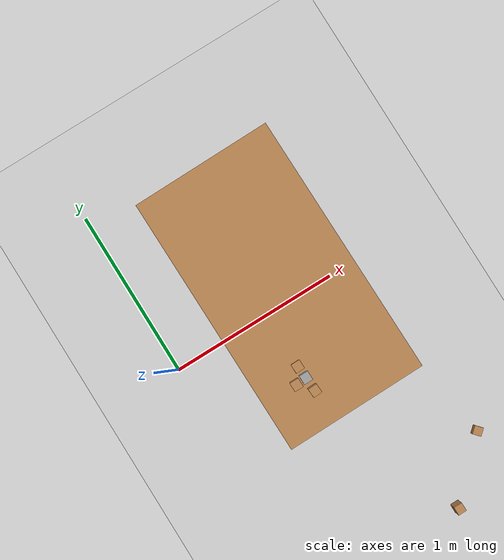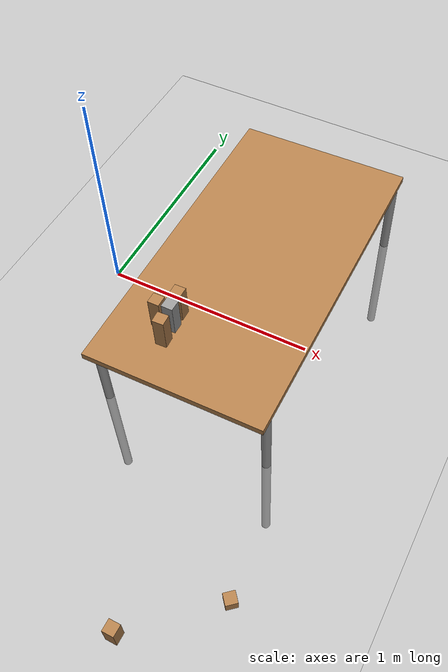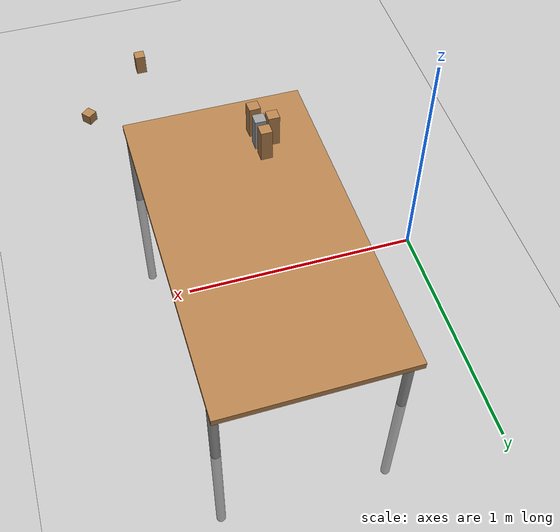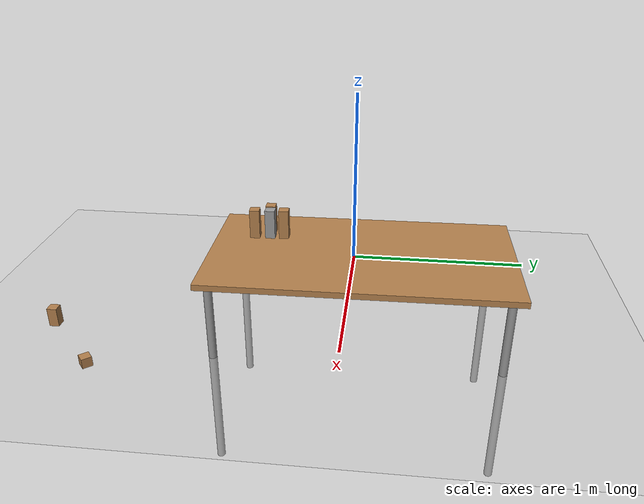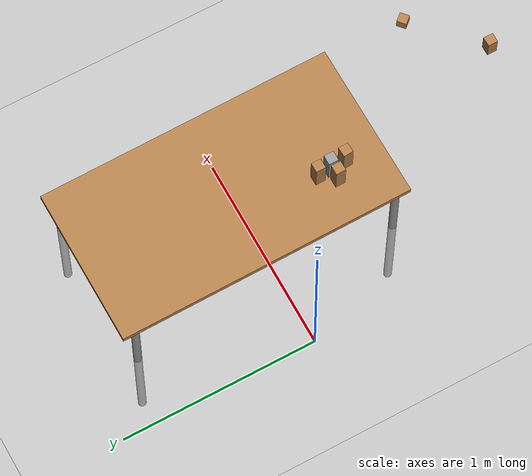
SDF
<sdf version="1.4">
 <world name="default">
  <model name="ground_plane">
   <static>1</static>
   <link name="link">
    <collision name="collision">
     <geometry><plane><normal>0 0 1</normal><size>100 100</size></plane></geometry>
     <surface><friction><ode><mu>100</mu><mu2>50</mu2></ode></friction></surface>
    </collision>
    <visual name="visual">
     <cast_shadows>0</cast_shadows>
     <geometry><plane><normal>0 0 1</normal><size>100 100</size></plane></geometry>
     <material>
      <script><uri>file://media/materials/scripts/gazebo.material</uri><name>Gazebo/Grey</name></script>
     </material>
    </visual>
    <velocity_decay><linear>0</linear><angular>0</angular></velocity_decay>
   </link>
  </model>
  <light name="sun" type="directional">
   <pose>0 0 10 0 -0 0</pose>
   <diffuse>0.8 0.8 0.8 1</diffuse>
   <specular>0.2 0.2 0.2 1</specular>
   <attenuation>
    <range>1000</range>
    <constant>0.9</constant>
    <linear>0.01</linear>
    <quadratic>0.001</quadratic>
   </attenuation>
   <direction>-0.5 0.1 -0.9</direction>
  </light>
  <physics type="ode">
   <real_time_update_rate>1000</real_time_update_rate>
   <gravity>0 0 -9.81</gravity>
   <max_step_size>0.001</max_step_size>
   <real_time_factor>1</real_time_factor>
  </physics>
  <scene><ambient>0.4 0.4 0.4 1</ambient><background>0.7 0.7 0.7 1</background><shadows>1</shadows></scene>
  <spherical_coordinates>
   <surface_model>EARTH_WGS84</surface_model>
   <latitude_deg>0</latitude_deg>
   <longitude_deg>0</longitude_deg>
   <elevation>0</elevation>
   <heading_deg>0</heading_deg>
  </spherical_coordinates>
  <model name="custom_2">
   <link name="link">
    <inertial>
     <mass>0.0565</mass>
     <inertia>
      <ixx>2.35417e-05</ixx>
      <ixy>0</ixy>
      <ixz>0</ixz>
      <iyy>2.35417e-05</iyy>
      <iyz>0</iyz>
      <izz>2.35417e-05</izz>
     </inertia>
    </inertial>
    <collision name="collision">
     <geometry><box><size>0.05 0.05 0.1</size></box></geometry>
     <surface><contact><ode><max_vel>0.1</max_vel><min_depth>0.001</min_depth></ode></contact></surface>
    </collision>
    <visual name="visual">
     <geometry><box><size>0.05 0.05 0.1</size></box></geometry>
     <material>
      <script><uri>file://media/materials/scripts/gazebo.material</uri><name>Gazebo/Wood</name></script>
     </material>
    </visual>
    <velocity_decay><linear>0</linear><angular>0</angular></velocity_decay>
   </link>
   <pose>0.913468 -1.46484 0.049486 -4.8e-05 -8.27181e-25 -0.000109</pose>
   <static>0</static>
  </model>
  <model name="custom_3">
   <link name="link">
    <inertial>
     <mass>0.0565</mass>
     <inertia>
      <ixx>2.35417e-05</ixx>
      <ixy>0</ixy>
      <ixz>0</ixz>
      <iyy>2.35417e-05</iyy>
      <iyz>0</iyz>
      <izz>2.35417e-05</izz>
     </inertia>
    </inertial>
    <collision name="collision">
     <geometry><box><size>0.05 0.05 0.05</size></box></geometry>
     <surface><contact><ode><max_vel>0.1</max_vel><min_depth>0.001</min_depth></ode></contact></surface>
    </collision>
    <visual name="visual">
     <geometry><box><size>0.05 0.05 0.05</size></box></geometry>
     <material>
      <script><uri>file://media/materials/scripts/gazebo.material</uri><name>Gazebo/Wood</name></script>
     </material>
    </visual>
    <velocity_decay><linear>0</linear><angular>0</angular></velocity_decay>
   </link>
   <pose>1.23267 -1.16765 0.024672 -0.004668 -0.004339 0.713182</pose>
   <static>0</static>
  </model>
  <model name="custom_1_0">
   <link name="link">
    <inertial>
     <mass>0.0565</mass>
     <inertia>
      <ixx>2.35417e-05</ixx>
      <ixy>0</ixy>
      <ixz>0</ixz>
      <iyy>2.35417e-05</iyy>
      <iyz>0</iyz>
      <izz>2.35417e-05</izz>
     </inertia>
    </inertial>
    <collision name="collision">
     <geometry><box><size>0.05 0.05 0.15</size></box></geometry>
     <surface><contact><ode><max_vel>0.1</max_vel><min_depth>0.001</min_depth></ode></contact></surface>
    </collision>
    <visual name="visual">
     <geometry><box><size>0.05 0.05 0.15</size></box></geometry>
     <material>
      <script><uri>file://media/materials/scripts/gazebo.material</uri><name>Gazebo/Wood</name></script>
     </material>
    </visual>
    <velocity_decay><linear>0</linear><angular>0</angular></velocity_decay>
   </link>
   <pose>0.566597 -0.325186 0.467358 0.008201 -0.000391 -1.55055</pose>
   <static>0</static>
  </model>
  <model name="custom_table">
   <static>1</static>
   <link name="link">
    <collision name="surface">
     <geometry><box><size>1.5 0.8 0.03</size></box></geometry>
     <surface><friction><ode><mu>0.6</mu><mu2>0.6</mu2></ode></friction></surface>
    </collision>
    <visual name="visual1">
     <geometry><box><size>1.5 0.8 0.03</size></box></geometry>
     <material>
      <script><uri>file://media/materials/scripts/gazebo.material</uri><name>Gazebo/Wood</name></script>
     </material>
    </visual>
    <collision name="front_left_leg">
     <pose>0.68 0.38 0.5 0 -0 0</pose>
     <geometry><cylinder><radius>0.02</radius><length>1</length></cylinder></geometry>
    </collision>
    <visual name="front_left_leg">
     <pose>0.68 0.38 0.5 0 -0 0</pose>
     <geometry><cylinder><radius>0.02</radius><length>1</length></cylinder></geometry>
     <material>
      <script><uri>file://media/materials/scripts/gazebo.material</uri><name>Gazebo/Grey</name></script>
     </material>
    </visual>
    <collision name="front_right_leg">
     <pose>0.68 -0.38 0.5 0 -0 0</pose>
     <geometry><cylinder><radius>0.02</radius><length>1</length></cylinder></geometry>
    </collision>
    <visual name="front_right_leg">
     <pose>0.68 -0.38 0.5 0 -0 0</pose>
     <geometry><cylinder><radius>0.02</radius><length>1</length></cylinder></geometry>
     <material>
      <script><uri>file://media/materials/scripts/gazebo.material</uri><name>Gazebo/Grey</name></script>
     </material>
    </visual>
    <collision name="back_right_leg">
     <pose>-0.68 -0.38 0.5 0 -0 0</pose>
     <geometry><cylinder><radius>0.02</radius><length>1</length></cylinder></geometry>
    </collision>
    <visual name="back_right_leg">
     <pose>-0.68 -0.38 0.5 0 -0 0</pose>
     <geometry><cylinder><radius>0.02</radius><length>1</length></cylinder></geometry>
     <material>
      <script><uri>file://media/materials/scripts/gazebo.material</uri><name>Gazebo/Grey</name></script>
     </material>
    </visual>
    <collision name="back_left_leg">
     <pose>-0.68 0.38 0.5 0 -0 0</pose>
     <geometry><cylinder><radius>0.02</radius><length>1</length></cylinder></geometry>
    </collision>
    <visual name="back_left_leg">
     <pose>-0.68 0.38 0.5 0 -0 0</pose>
     <geometry><cylinder><radius>0.02</radius><length>1</length></cylinder></geometry>
     <material>
      <script><uri>file://media/materials/scripts/gazebo.material</uri><name>Gazebo/Grey</name></script>
     </material>
    </visual>
    <velocity_decay><linear>0</linear><angular>0</angular></velocity_decay>
   </link>
   <pose>0.706521 0.08117 0.378441 3.13347 0.000225 1.5819</pose>
  </model>
  <model name="custom_1_1">
   <link name="link">
    <inertial>
     <mass>0.0565</mass>
     <inertia>
      <ixx>2.35417e-05</ixx>
      <ixy>0</ixy>
      <ixz>0</ixz>
      <iyy>2.35417e-05</iyy>
      <iyz>0</iyz>
      <izz>2.35417e-05</izz>
     </inertia>
    </inertial>
    <collision name="collision">
     <geometry><box><size>0.05 0.05 0.15</size></box></geometry>
     <surface><contact><ode><max_vel>0.1</max_vel><min_depth>0.001</min_depth></ode></contact></surface>
    </collision>
    <visual name="visual">
     <geometry><box><size>0.05 0.05 0.15</size></box></geometry>
     <material>
      <script><uri>file://media/materials/scripts/gazebo.material</uri><name>Gazebo/Wood</name></script>
     </material>
    </visual>
    <velocity_decay><linear>0</linear><angular>0</angular></velocity_decay>
   </link>
   <pose>0.512927 -0.399791 0.466931 -0.000171 -0.008311 0.006514</pose>
   <static>0</static>
  </model>
  <model name="custom_1_2">
   <link name="link">
    <inertial>
     <mass>0.0565</mass>
     <inertia>
      <ixx>2.35417e-05</ixx>
      <ixy>0</ixy>
      <ixz>0</ixz>
      <iyy>2.35417e-05</iyy>
      <iyz>0</iyz>
      <izz>2.35417e-05</izz>
     </inertia>
    </inertial>
    <collision name="collision">
     <geometry><box><size>0.05 0.05 0.15</size></box></geometry>
     <surface><contact><ode><max_vel>0.1</max_vel><min_depth>0.001</min_depth></ode></contact></surface>
    </collision>
    <visual name="visual">
     <geometry><box><size>0.05 0.05 0.15</size></box></geometry>
     <material>
      <script><uri>file://media/materials/scripts/gazebo.material</uri><name>Gazebo/Wood</name></script>
     </material>
    </visual>
    <velocity_decay><linear>0</linear><angular>0</angular></velocity_decay>
   </link>
   <pose>0.57597 -0.472996 0.467456 -0.008104 0.000439 1.62058</pose>
   <static>0</static>
  </model>
  <model name="target">
   <link name="link">
    <inertial>
     <mass>0.0565</mass>
     <inertia>
      <ixx>2.35417e-05</ixx>
      <ixy>0</ixy>
      <ixz>0</ixz>
      <iyy>2.35417e-05</iyy>
      <iyz>0</iyz>
      <izz>2.35417e-05</izz>
     </inertia>
    </inertial>
    <collision name="collision">
     <geometry><box><size>0.05 0.05 0.15</size></box></geometry>
     <surface><contact><ode><max_vel>0.1</max_vel><min_depth>0.001</min_depth></ode></contact></surface>
    </collision>
    <visual name="visual">
     <geometry><box><size>0.05 0.05 0.15</size></box></geometry>
     <material>
      <script><uri>file://media/materials/scripts/gazebo.material</uri><name>Gazebo/Grey</name></script>
     </material>
    </visual>
    <velocity_decay><linear>0</linear><angular>0</angular></velocity_decay>
   </link>
   <pose>0.571732 -0.394508 0.466874 0.000947 -0.008872 -0.001</pose>
   <static>0</static>
  </model>
 </world>
</sdf>
